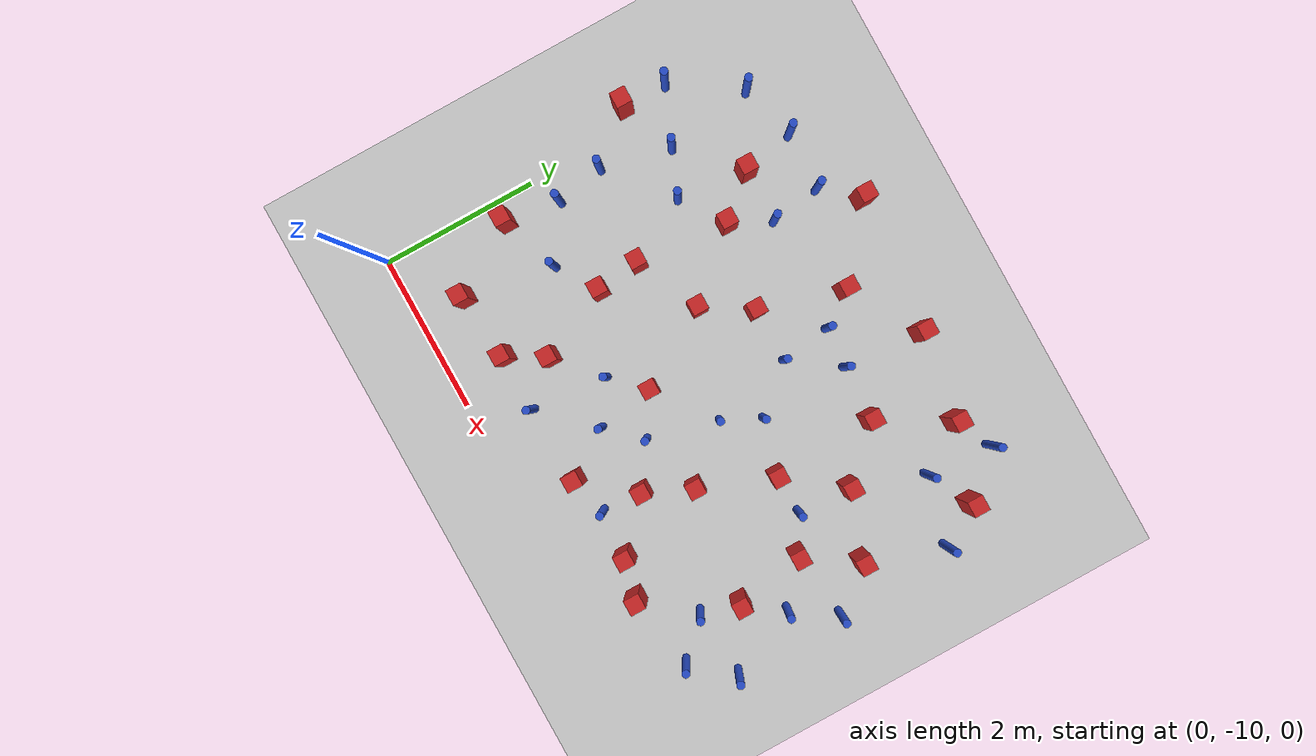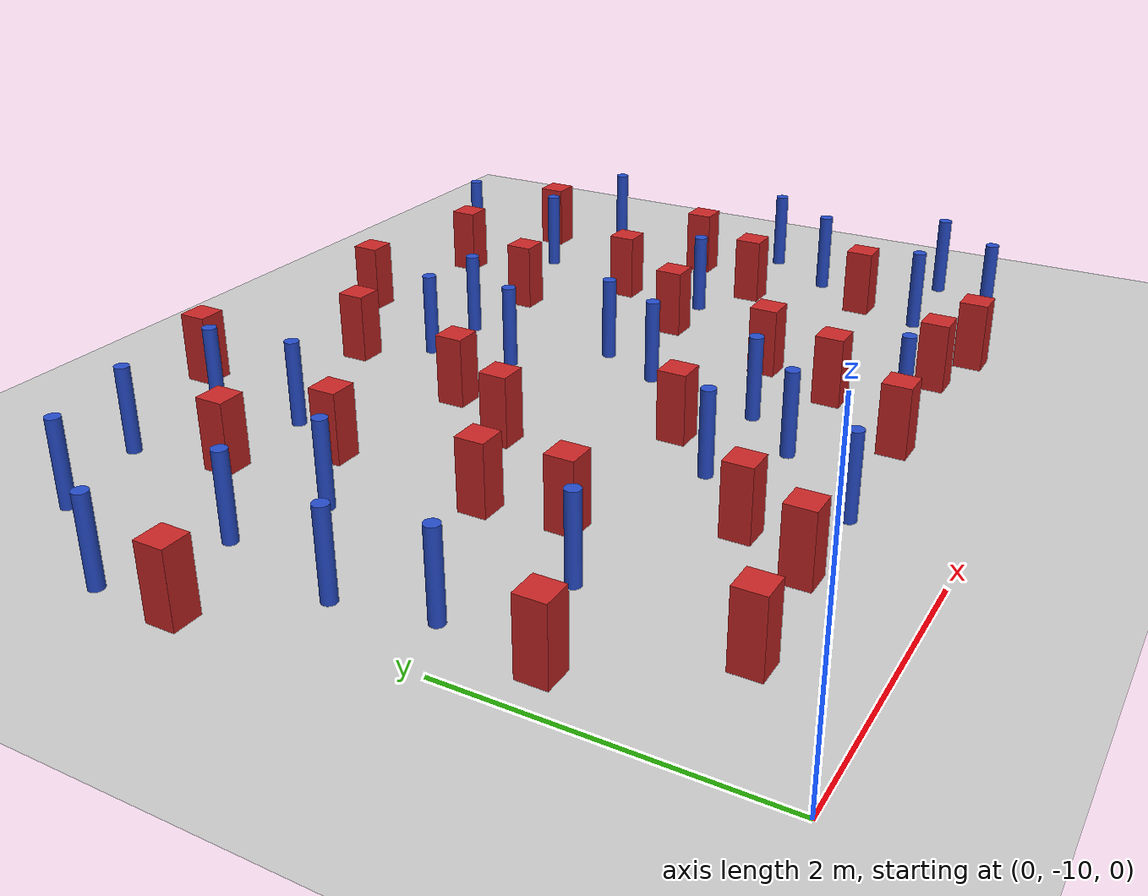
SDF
<sdf version="1.6">
 <world name="default">
  <model name="ground_plane">
   <static>1</static>
   <link name="link">
    <collision name="collision">
     <geometry><plane><normal>0 0 1</normal><size>100 100</size></plane></geometry>
     <surface><friction><ode><mu>100</mu><mu2>50</mu2></ode></friction></surface>
    </collision>
    <visual name="visual">
     <cast_shadows>0</cast_shadows>
     <geometry><plane><normal>0 0 1</normal><size>100 100</size></plane></geometry>
     <material>
      <ambient>1.0 1.0 1.0 1.0</ambient>
      <diffuse>0.8 0.8 0.8 1.0</diffuse>
      <specular>0.01 0.01 0.01 1.000000</specular>
     </material>
    </visual>
   </link>
  </model>
  <model name="pole_obstacle3">
   <static>true</static>
   <pose>0.289647013315 -7.17441640255 2.88873142074e-08 -9.90536689592e-09 4.60219948995e-07 -1.20965994956e-07</pose>
   <link name="link">
    <pose>0 0 0.3 0 -0 0</pose>
    <inertial>
     <mass>1</mass>
     <inertia><ixx>0.145833</ixx><ixy>0</ixy><ixz>0</ixz><iyy>0.145833</iyy><iyz>0</iyz><izz>0.125</izz></inertia>
    </inertial>
    <collision name="collision">
     <geometry><cylinder><radius>0.05</radius><length>.6</length></cylinder></geometry>
    </collision>
    <visual name="visual">
     <geometry><cylinder><radius>0.05</radius><length>.6</length></cylinder></geometry>
     <material>
      <script><name>Gazebo/Blue</name><uri>file://media/materials/scripts/gazebo.material</uri></script>
     </material>
    </visual>
   </link>
  </model>
  <model name="pole_obstacle4">
   <static>true</static>
   <pose>5.55034448489 -8.70579672338 2.88873142074e-08 -9.9053668967e-09 4.60219948993e-07 -1.20965994957e-07</pose>
   <link name="link">
    <pose>0 0 0.3 0 -0 0</pose>
    <inertial>
     <mass>1</mass>
     <inertia><ixx>0.145833</ixx><ixy>0</ixy><ixz>0</ixz><iyy>0.145833</iyy><iyz>0</iyz><izz>0.125</izz></inertia>
    </inertial>
    <collision name="collision">
     <geometry><cylinder><radius>0.05</radius><length>.6</length></cylinder></geometry>
    </collision>
    <visual name="visual">
     <geometry><cylinder><radius>0.05</radius><length>.6</length></cylinder></geometry>
     <material>
      <script><name>Gazebo/Blue</name><uri>file://media/materials/scripts/gazebo.material</uri></script>
     </material>
    </visual>
   </link>
  </model>
  <model name="square_post_obstacle4">
   <static>true</static>
   <pose>4.50219879882 -5.79253463406 8.22691968438e-08 7.22125133819e-06 -7.54495500217e-07 2.29674213826e-05</pose>
   <link name="link">
    <pose>0 0 0.25 0 -0 0</pose>
    <inertial>
     <mass>100</mass>
     <inertia>
      <ixx>0.166667</ixx>
      <ixy>0</ixy>
      <ixz>0</ixz>
      <iyy>0.166667</iyy>
      <iyz>0</iyz>
      <izz>0.166667</izz>
     </inertia>
    </inertial>
    <collision name="collision"><geometry><box><size>.2 .2 .5</size></box></geometry></collision>
    <visual name="visual">
     <geometry><box><size>.2 .2 .5</size></box></geometry>
     <material>
      <script><name>Gazebo/Red</name><uri>file://media/materials/scripts/gazebo.material</uri></script>
     </material>
    </visual>
   </link>
  </model>
  <model name="square_post_obstacle11">
   <static>true</static>
   <pose>3.88004198026 -4.7429489376 8.22691968438e-08 7.2212513382e-06 -7.54495500217e-07 2.29674213826e-05</pose>
   <link name="link">
    <pose>0 0 0.25 0 -0 0</pose>
    <inertial>
     <mass>100</mass>
     <inertia>
      <ixx>0.166667</ixx>
      <ixy>0</ixy>
      <ixz>0</ixz>
      <iyy>0.166667</iyy>
      <iyz>0</iyz>
      <izz>0.166667</izz>
     </inertia>
    </inertial>
    <collision name="collision"><geometry><box><size>.2 .2 .5</size></box></geometry></collision>
    <visual name="visual">
     <geometry><box><size>.2 .2 .5</size></box></geometry>
     <material>
      <script><name>Gazebo/Red</name><uri>file://media/materials/scripts/gazebo.material</uri></script>
     </material>
    </visual>
   </link>
  </model>
  <model name="pole_obstacle21">
   <static>true</static>
   <pose>1.05807493079 -8.22462605831 2.88873142074e-08 -9.90536690474e-09 4.60219948974e-07 -1.2096599497e-07</pose>
   <link name="link">
    <pose>0 0 0.3 0 -0 0</pose>
    <inertial>
     <mass>1</mass>
     <inertia><ixx>0.145833</ixx><ixy>0</ixy><ixz>0</ixz><iyy>0.145833</iyy><iyz>0</iyz><izz>0.125</izz></inertia>
    </inertial>
    <collision name="collision">
     <geometry><cylinder><radius>0.05</radius><length>.6</length></cylinder></geometry>
    </collision>
    <visual name="visual">
     <geometry><cylinder><radius>0.05</radius><length>.6</length></cylinder></geometry>
     <material>
      <script><name>Gazebo/Blue</name><uri>file://media/materials/scripts/gazebo.material</uri></script>
     </material>
    </visual>
   </link>
  </model>
  <model name="square_post_obstacle18">
   <static>true</static>
   <pose>2.99183701534 -5.29524657008 8.22691968438e-08 7.22125133819e-06 -7.54495500217e-07 2.29674213826e-05</pose>
   <link name="link">
    <pose>0 0 0.25 0 -0 0</pose>
    <inertial>
     <mass>100</mass>
     <inertia>
      <ixx>0.166667</ixx>
      <ixy>0</ixy>
      <ixz>0</ixz>
      <iyy>0.166667</iyy>
      <iyz>0</iyz>
      <izz>0.166667</izz>
     </inertia>
    </inertial>
    <collision name="collision"><geometry><box><size>.2 .2 .5</size></box></geometry></collision>
    <visual name="visual">
     <geometry><box><size>.2 .2 .5</size></box></geometry>
     <material>
      <script><name>Gazebo/Red</name><uri>file://media/materials/scripts/gazebo.material</uri></script>
     </material>
    </visual>
   </link>
  </model>
  <model name="pole_obstacle27">
   <static>true</static>
   <pose>3.0299802702 -8.66852703791 2.88873142074e-08 -9.90536692318e-09 4.6021994893e-07 -1.20965994988e-07</pose>
   <link name="link">
    <pose>0 0 0.3 0 -0 0</pose>
    <inertial>
     <mass>1</mass>
     <inertia><ixx>0.145833</ixx><ixy>0</ixy><ixz>0</ixz><iyy>0.145833</iyy><iyz>0</iyz><izz>0.125</izz></inertia>
    </inertial>
    <collision name="collision">
     <geometry><cylinder><radius>0.05</radius><length>.6</length></cylinder></geometry>
    </collision>
    <visual name="visual">
     <geometry><cylinder><radius>0.05</radius><length>.6</length></cylinder></geometry>
     <material>
      <script><name>Gazebo/Blue</name><uri>file://media/materials/scripts/gazebo.material</uri></script>
     </material>
    </visual>
   </link>
  </model>
  <model name="pole_obstacle28">
   <static>true</static>
   <pose>6.3905071494 -7.2385293284 2.88873142074e-08 -9.90536690842e-09 4.60219948965e-07 -1.20965994976e-07</pose>
   <link name="link">
    <pose>0 0 0.3 0 -0 0</pose>
    <inertial>
     <mass>1</mass>
     <inertia><ixx>0.145833</ixx><ixy>0</ixy><ixz>0</ixz><iyy>0.145833</iyy><iyz>0</iyz><izz>0.125</izz></inertia>
    </inertial>
    <collision name="collision">
     <geometry><cylinder><radius>0.05</radius><length>.6</length></cylinder></geometry>
    </collision>
    <visual name="visual">
     <geometry><cylinder><radius>0.05</radius><length>.6</length></cylinder></geometry>
     <material>
      <script><name>Gazebo/Blue</name><uri>file://media/materials/scripts/gazebo.material</uri></script>
     </material>
    </visual>
   </link>
  </model>
  <model name="pole_obstacle33">
   <static>true</static>
   <pose>0.318309777084 -5.17466550888 2.88873142074e-08 -9.90536689683e-09 4.60219948993e-07 -1.20965994957e-07</pose>
   <link name="link">
    <pose>0 0 0.3 0 -0 0</pose>
    <inertial>
     <mass>1</mass>
     <inertia><ixx>0.145833</ixx><ixy>0</ixy><ixz>0</ixz><iyy>0.145833</iyy><iyz>0</iyz><izz>0.125</izz></inertia>
    </inertial>
    <collision name="collision">
     <geometry><cylinder><radius>0.05</radius><length>.6</length></cylinder></geometry>
    </collision>
    <visual name="visual">
     <geometry><cylinder><radius>0.05</radius><length>.6</length></cylinder></geometry>
     <material>
      <script><name>Gazebo/Blue</name><uri>file://media/materials/scripts/gazebo.material</uri></script>
     </material>
    </visual>
   </link>
  </model>
  <model name="square_post_obstacle29">
   <static>true</static>
   <pose>5.03210273392 -9.29875231078 8.22691968438e-08 7.22125133819e-06 -7.54495500217e-07 2.29674213826e-05</pose>
   <link name="link">
    <pose>0 0 0.25 0 -0 0</pose>
    <inertial>
     <mass>100</mass>
     <inertia>
      <ixx>0.166667</ixx>
      <ixy>0</ixy>
      <ixz>0</ixz>
      <iyy>0.166667</iyy>
      <iyz>0</iyz>
      <izz>0.166667</izz>
     </inertia>
    </inertial>
    <collision name="collision"><geometry><box><size>.2 .2 .5</size></box></geometry></collision>
    <visual name="visual">
     <geometry><box><size>.2 .2 .5</size></box></geometry>
     <material>
      <script><name>Gazebo/Red</name><uri>file://media/materials/scripts/gazebo.material</uri></script>
     </material>
    </visual>
   </link>
  </model>
  <model name="pole_obstacle38">
   <static>true</static>
   <pose>6.03492944194 -7.77203540346 2.88873142074e-08 -9.90536690842e-09 4.60219948965e-07 -1.20965994976e-07</pose>
   <link name="link">
    <pose>0 0 0.3 0 -0 0</pose>
    <inertial>
     <mass>1</mass>
     <inertia><ixx>0.145833</ixx><ixy>0</ixy><ixz>0</ixz><iyy>0.145833</iyy><iyz>0</iyz><izz>0.125</izz></inertia>
    </inertial>
    <collision name="collision">
     <geometry><cylinder><radius>0.05</radius><length>.6</length></cylinder></geometry>
    </collision>
    <visual name="visual">
     <geometry><cylinder><radius>0.05</radius><length>.6</length></cylinder></geometry>
     <material>
      <script><name>Gazebo/Blue</name><uri>file://media/materials/scripts/gazebo.material</uri></script>
     </material>
    </visual>
   </link>
  </model>
  <model name="pole_obstacle39">
   <static>true</static>
   <pose>2.43836224285 -9.28975259155 2.88873142074e-08 -9.90536692318e-09 4.6021994893e-07 -1.20965994988e-07</pose>
   <link name="link">
    <pose>0 0 0.3 0 -0 0</pose>
    <inertial>
     <mass>1</mass>
     <inertia><ixx>0.145833</ixx><ixy>0</ixy><ixz>0</ixz><iyy>0.145833</iyy><iyz>0</iyz><izz>0.125</izz></inertia>
    </inertial>
    <collision name="collision">
     <geometry><cylinder><radius>0.05</radius><length>.6</length></cylinder></geometry>
    </collision>
    <visual name="visual">
     <geometry><cylinder><radius>0.05</radius><length>.6</length></cylinder></geometry>
     <material>
      <script><name>Gazebo/Blue</name><uri>file://media/materials/scripts/gazebo.material</uri></script>
     </material>
    </visual>
   </link>
  </model>
  <model name="square_post_obstacle37">
   <static>true</static>
   <pose>1.60803207701 -6.16248636813 8.22691968438e-08 7.2212513382e-06 -7.54495500217e-07 2.29674213826e-05</pose>
   <link name="link">
    <pose>0 0 0.25 0 -0 0</pose>
    <inertial>
     <mass>100</mass>
     <inertia>
      <ixx>0.166667</ixx>
      <ixy>0</ixy>
      <ixz>0</ixz>
      <iyy>0.166667</iyy>
      <iyz>0</iyz>
      <izz>0.166667</izz>
     </inertia>
    </inertial>
    <collision name="collision"><geometry><box><size>.2 .2 .5</size></box></geometry></collision>
    <visual name="visual">
     <geometry><box><size>.2 .2 .5</size></box></geometry>
     <material>
      <script><name>Gazebo/Red</name><uri>file://media/materials/scripts/gazebo.material</uri></script>
     </material>
    </visual>
   </link>
  </model>
  <model name="pole_obstacle52">
   <static>true</static>
   <pose>1.85922119316 -5.64357730502 2.88873142074e-08 -9.90536689852e-09 4.60219948989e-07 -1.2096599496e-07</pose>
   <link name="link">
    <pose>0 0 0.3 0 -0 0</pose>
    <inertial>
     <mass>1</mass>
     <inertia><ixx>0.145833</ixx><ixy>0</ixy><ixz>0</ixz><iyy>0.145833</iyy><iyz>0</iyz><izz>0.125</izz></inertia>
    </inertial>
    <collision name="collision">
     <geometry><cylinder><radius>0.05</radius><length>.6</length></cylinder></geometry>
    </collision>
    <visual name="visual">
     <geometry><cylinder><radius>0.05</radius><length>.6</length></cylinder></geometry>
     <material>
      <script><name>Gazebo/Blue</name><uri>file://media/materials/scripts/gazebo.material</uri></script>
     </material>
    </visual>
   </link>
  </model>
  <model name="square_post_obstacle41">
   <static>true</static>
   <pose>2.68928621535 -6.36576682193 8.22691968438e-08 7.2212513382e-06 -7.54495500217e-07 2.29674213826e-05</pose>
   <link name="link">
    <pose>0 0 0.25 0 -0 0</pose>
    <inertial>
     <mass>100</mass>
     <inertia>
      <ixx>0.166667</ixx>
      <ixy>0</ixy>
      <ixz>0</ixz>
      <iyy>0.166667</iyy>
      <iyz>0</iyz>
      <izz>0.166667</izz>
     </inertia>
    </inertial>
    <collision name="collision"><geometry><box><size>.2 .2 .5</size></box></geometry></collision>
    <visual name="visual">
     <geometry><box><size>.2 .2 .5</size></box></geometry>
     <material>
      <script><name>Gazebo/Red</name><uri>file://media/materials/scripts/gazebo.material</uri></script>
     </material>
    </visual>
   </link>
  </model>
  <model name="pole_obstacle57">
   <static>true</static>
   <pose>3.3826965203 -6.35336297614 2.88873142074e-08 -9.90536689859e-09 4.60219948989e-07 -1.20965994961e-07</pose>
   <link name="link">
    <pose>0 0 0.3 0 -0 0</pose>
    <inertial>
     <mass>1</mass>
     <inertia><ixx>0.145833</ixx><ixy>0</ixy><ixz>0</ixz><iyy>0.145833</iyy><iyz>0</iyz><izz>0.125</izz></inertia>
    </inertial>
    <collision name="collision">
     <geometry><cylinder><radius>0.05</radius><length>.6</length></cylinder></geometry>
    </collision>
    <visual name="visual">
     <geometry><cylinder><radius>0.05</radius><length>.6</length></cylinder></geometry>
     <material>
      <script><name>Gazebo/Blue</name><uri>file://media/materials/scripts/gazebo.material</uri></script>
     </material>
    </visual>
   </link>
  </model>
  <model name="square_post_obstacle45">
   <static>true</static>
   <pose>0.295105017387 -8.48352578291 8.22691968438e-08 7.2212513382e-06 -7.54495500217e-07 2.29674213826e-05</pose>
   <link name="link">
    <pose>0 0 0.25 0 -0 0</pose>
    <inertial>
     <mass>100</mass>
     <inertia>
      <ixx>0.166667</ixx>
      <ixy>0</ixy>
      <ixz>0</ixz>
      <iyy>0.166667</iyy>
      <iyz>0</iyz>
      <izz>0.166667</izz>
     </inertia>
    </inertial>
    <collision name="collision"><geometry><box><size>.2 .2 .5</size></box></geometry></collision>
    <visual name="visual">
     <geometry><box><size>.2 .2 .5</size></box></geometry>
     <material>
      <script><name>Gazebo/Red</name><uri>file://media/materials/scripts/gazebo.material</uri></script>
     </material>
    </visual>
   </link>
  </model>
  <model name="pole_obstacle63">
   <static>true</static>
   <pose>5.42742456569 -5.51341413305 2.88873142074e-08 -9.90536690842e-09 4.60219948965e-07 -1.20965994976e-07</pose>
   <link name="link">
    <pose>0 0 0.3 0 -0 0</pose>
    <inertial>
     <mass>1</mass>
     <inertia><ixx>0.145833</ixx><ixy>0</ixy><ixz>0</ixz><iyy>0.145833</iyy><iyz>0</iyz><izz>0.125</izz></inertia>
    </inertial>
    <collision name="collision">
     <geometry><cylinder><radius>0.05</radius><length>.6</length></cylinder></geometry>
    </collision>
    <visual name="visual">
     <geometry><cylinder><radius>0.05</radius><length>.6</length></cylinder></geometry>
     <material>
      <script><name>Gazebo/Blue</name><uri>file://media/materials/scripts/gazebo.material</uri></script>
     </material>
    </visual>
   </link>
  </model>
  <model name="pole_obstacle65">
   <static>true</static>
   <pose>0.491046160283 -6.29526179245 2.88873142074e-08 -9.90536689616e-09 4.60219948994e-07 -1.20965994955e-07</pose>
   <link name="link">
    <pose>0 0 0.3 0 -0 0</pose>
    <inertial>
     <mass>1</mass>
     <inertia><ixx>0.145833</ixx><ixy>0</ixy><ixz>0</ixz><iyy>0.145833</iyy><iyz>0</iyz><izz>0.125</izz></inertia>
    </inertial>
    <collision name="collision">
     <geometry><cylinder><radius>0.05</radius><length>.6</length></cylinder></geometry>
    </collision>
    <visual name="visual">
     <geometry><cylinder><radius>0.05</radius><length>.6</length></cylinder></geometry>
     <material>
      <script><name>Gazebo/Blue</name><uri>file://media/materials/scripts/gazebo.material</uri></script>
     </material>
    </visual>
   </link>
  </model>
  <model name="square_post_obstacle55">
   <static>true</static>
   <pose>5.10214788465 -6.4042798632 8.22691968438e-08 7.2212513382e-06 -7.54495500217e-07 2.29674213826e-05</pose>
   <link name="link">
    <pose>0 0 0.25 0 -0 0</pose>
    <inertial>
     <mass>100</mass>
     <inertia>
      <ixx>0.166667</ixx>
      <ixy>0</ixy>
      <ixz>0</ixz>
      <iyy>0.166667</iyy>
      <iyz>0</iyz>
      <izz>0.166667</izz>
     </inertia>
    </inertial>
    <collision name="collision"><geometry><box><size>.2 .2 .5</size></box></geometry></collision>
    <visual name="visual">
     <geometry><box><size>.2 .2 .5</size></box></geometry>
     <material>
      <script><name>Gazebo/Red</name><uri>file://media/materials/scripts/gazebo.material</uri></script>
     </material>
    </visual>
   </link>
  </model>
  <model name="square_post_obstacle57">
   <static>true</static>
   <pose>0.85562043418 -9.35954926265 8.22691968438e-08 7.22125133819e-06 -7.54495500217e-07 2.29674213826e-05</pose>
   <link name="link">
    <pose>0 0 0.25 0 -0 0</pose>
    <inertial>
     <mass>100</mass>
     <inertia>
      <ixx>0.166667</ixx>
      <ixy>0</ixy>
      <ixz>0</ixz>
      <iyy>0.166667</iyy>
      <iyz>0</iyz>
      <izz>0.166667</izz>
     </inertia>
    </inertial>
    <collision name="collision"><geometry><box><size>.2 .2 .5</size></box></geometry></collision>
    <visual name="visual">
     <geometry><box><size>.2 .2 .5</size></box></geometry>
     <material>
      <script><name>Gazebo/Red</name><uri>file://media/materials/scripts/gazebo.material</uri></script>
     </material>
    </visual>
   </link>
  </model>
  <model name="square_post_obstacle61">
   <static>true</static>
   <pose>1.5698614102 -7.89176565725 8.22691968438e-08 7.2212513382e-06 -7.54495500217e-07 2.29674213826e-05</pose>
   <link name="link">
    <pose>0 0 0.25 0 -0 0</pose>
    <inertial>
     <mass>100</mass>
     <inertia>
      <ixx>0.166667</ixx>
      <ixy>0</ixy>
      <ixz>0</ixz>
      <iyy>0.166667</iyy>
      <iyz>0</iyz>
      <izz>0.166667</izz>
     </inertia>
    </inertial>
    <collision name="collision"><geometry><box><size>.2 .2 .5</size></box></geometry></collision>
    <visual name="visual">
     <geometry><box><size>.2 .2 .5</size></box></geometry>
     <material>
      <script><name>Gazebo/Red</name><uri>file://media/materials/scripts/gazebo.material</uri></script>
     </material>
    </visual>
   </link>
  </model>
  <model name="pole_obstacle73">
   <static>true</static>
   <pose>5.48417873443 -4.67692983862 2.88873142074e-08 -9.90536690842e-09 4.60219948965e-07 -1.20965994976e-07</pose>
   <link name="link">
    <pose>0 0 0.3 0 -0 0</pose>
    <inertial>
     <mass>1</mass>
     <inertia><ixx>0.145833</ixx><ixy>0</ixy><ixz>0</ixz><iyy>0.145833</iyy><iyz>0</iyz><izz>0.125</izz></inertia>
    </inertial>
    <collision name="collision">
     <geometry><cylinder><radius>0.05</radius><length>.6</length></cylinder></geometry>
    </collision>
    <visual name="visual">
     <geometry><cylinder><radius>0.05</radius><length>.6</length></cylinder></geometry>
     <material>
      <script><name>Gazebo/Blue</name><uri>file://media/materials/scripts/gazebo.material</uri></script>
     </material>
    </visual>
   </link>
  </model>
  <model name="pole_obstacle78">
   <static>true</static>
   <pose>5.99858282601 -9.14602631289 2.88873142074e-08 -9.9053668967e-09 4.60219948993e-07 -1.20965994957e-07</pose>
   <link name="link">
    <pose>0 0 0.3 0 -0 0</pose>
    <inertial>
     <mass>1</mass>
     <inertia><ixx>0.145833</ixx><ixy>0</ixy><ixz>0</ixz><iyy>0.145833</iyy><iyz>0</iyz><izz>0.125</izz></inertia>
    </inertial>
    <collision name="collision">
     <geometry><cylinder><radius>0.05</radius><length>.6</length></cylinder></geometry>
    </collision>
    <visual name="visual">
     <geometry><cylinder><radius>0.05</radius><length>.6</length></cylinder></geometry>
     <material>
      <script><name>Gazebo/Blue</name><uri>file://media/materials/scripts/gazebo.material</uri></script>
     </material>
    </visual>
   </link>
  </model>
  <model name="pole_obstacle79">
   <static>true</static>
   <pose>-0.220142687257 -5.99588297079 2.88873142074e-08 -9.90536689703e-09 4.60219948992e-07 -1.20965994959e-07</pose>
   <link name="link">
    <pose>0 0 0.3 0 -0 0</pose>
    <inertial>
     <mass>1</mass>
     <inertia><ixx>0.145833</ixx><ixy>0</ixy><ixz>0</ixz><iyy>0.145833</iyy><iyz>0</iyz><izz>0.125</izz></inertia>
    </inertial>
    <collision name="collision">
     <geometry><cylinder><radius>0.05</radius><length>.6</length></cylinder></geometry>
    </collision>
    <visual name="visual">
     <geometry><cylinder><radius>0.05</radius><length>.6</length></cylinder></geometry>
     <material>
      <script><name>Gazebo/Blue</name><uri>file://media/materials/scripts/gazebo.material</uri></script>
     </material>
    </visual>
   </link>
  </model>
  <model name="pole_obstacle82">
   <static>true</static>
   <pose>3.41654378482 -8.26095335905 2.88873142074e-08 -9.90536692318e-09 4.6021994893e-07 -1.20965994988e-07</pose>
   <link name="link">
    <pose>0 0 0.3 0 -0 0</pose>
    <inertial>
     <mass>1</mass>
     <inertia><ixx>0.145833</ixx><ixy>0</ixy><ixz>0</ixz><iyy>0.145833</iyy><iyz>0</iyz><izz>0.125</izz></inertia>
    </inertial>
    <collision name="collision">
     <geometry><cylinder><radius>0.05</radius><length>.6</length></cylinder></geometry>
    </collision>
    <visual name="visual">
     <geometry><cylinder><radius>0.05</radius><length>.6</length></cylinder></geometry>
     <material>
      <script><name>Gazebo/Blue</name><uri>file://media/materials/scripts/gazebo.material</uri></script>
     </material>
    </visual>
   </link>
  </model>
  <model name="square_post_obstacle87">
   <static>true</static>
   <pose>1.98760986462 -8.8011796065 8.22691968438e-08 7.2212513382e-06 -7.54495500217e-07 2.29674213826e-05</pose>
   <link name="link">
    <pose>0 0 0.25 0 -0 0</pose>
    <inertial>
     <mass>100</mass>
     <inertia>
      <ixx>0.166667</ixx>
      <ixy>0</ixy>
      <ixz>0</ixz>
      <iyy>0.166667</iyy>
      <iyz>0</iyz>
      <izz>0.166667</izz>
     </inertia>
    </inertial>
    <collision name="collision"><geometry><box><size>.2 .2 .5</size></box></geometry></collision>
    <visual name="visual">
     <geometry><box><size>.2 .2 .5</size></box></geometry>
     <material>
      <script><name>Gazebo/Red</name><uri>file://media/materials/scripts/gazebo.material</uri></script>
     </material>
    </visual>
   </link>
  </model>
  <model name="square_post_obstacle89">
   <static>true</static>
   <pose>2.32214594269 -6.95775635293 8.22691968438e-08 7.2212513382e-06 -7.54495500217e-07 2.29674213826e-05</pose>
   <link name="link">
    <pose>0 0 0.25 0 -0 0</pose>
    <inertial>
     <mass>100</mass>
     <inertia>
      <ixx>0.166667</ixx>
      <ixy>0</ixy>
      <ixz>0</ixz>
      <iyy>0.166667</iyy>
      <iyz>0</iyz>
      <izz>0.166667</izz>
     </inertia>
    </inertial>
    <collision name="collision"><geometry><box><size>.2 .2 .5</size></box></geometry></collision>
    <visual name="visual">
     <geometry><box><size>.2 .2 .5</size></box></geometry>
     <material>
      <script><name>Gazebo/Red</name><uri>file://media/materials/scripts/gazebo.material</uri></script>
     </material>
    </visual>
   </link>
  </model>
  <model name="square_post_obstacle92">
   <static>true</static>
   <pose>5.68136752098 -8.21846066049 8.22691968438e-08 7.22125133819e-06 -7.54495500217e-07 2.29674213826e-05</pose>
   <link name="link">
    <pose>0 0 0.25 0 -0 0</pose>
    <inertial>
     <mass>100</mass>
     <inertia>
      <ixx>0.166667</ixx>
      <ixy>0</ixy>
      <ixz>0</ixz>
      <iyy>0.166667</iyy>
      <iyz>0</iyz>
      <izz>0.166667</izz>
     </inertia>
    </inertial>
    <collision name="collision"><geometry><box><size>.2 .2 .5</size></box></geometry></collision>
    <visual name="visual">
     <geometry><box><size>.2 .2 .5</size></box></geometry>
     <material>
      <script><name>Gazebo/Red</name><uri>file://media/materials/scripts/gazebo.material</uri></script>
     </material>
    </visual>
   </link>
  </model>
  <model name="pole_obstacle107">
   <static>true</static>
   <pose>3.8123427238 -5.75265353441 2.88873142074e-08 -9.90536689859e-09 4.60219948989e-07 -1.20965994961e-07</pose>
   <link name="link">
    <pose>0 0 0.3 0 -0 0</pose>
    <inertial>
     <mass>1</mass>
     <inertia><ixx>0.145833</ixx><ixy>0</ixy><ixz>0</ixz><iyy>0.145833</iyy><iyz>0</iyz><izz>0.125</izz></inertia>
    </inertial>
    <collision name="collision">
     <geometry><cylinder><radius>0.05</radius><length>.6</length></cylinder></geometry>
    </collision>
    <visual name="visual">
     <geometry><cylinder><radius>0.05</radius><length>.6</length></cylinder></geometry>
     <material>
      <script><name>Gazebo/Blue</name><uri>file://media/materials/scripts/gazebo.material</uri></script>
     </material>
    </visual>
   </link>
  </model>
  <model name="pole_obstacle108">
   <static>true</static>
   <pose>1.06537539007 -6.5296060038 2.88873142074e-08 -9.90536689852e-09 4.60219948989e-07 -1.2096599496e-07</pose>
   <link name="link">
    <pose>0 0 0.3 0 -0 0</pose>
    <inertial>
     <mass>1</mass>
     <inertia><ixx>0.145833</ixx><ixy>0</ixy><ixz>0</ixz><iyy>0.145833</iyy><iyz>0</iyz><izz>0.125</izz></inertia>
    </inertial>
    <collision name="collision">
     <geometry><cylinder><radius>0.05</radius><length>.6</length></cylinder></geometry>
    </collision>
    <visual name="visual">
     <geometry><cylinder><radius>0.05</radius><length>.6</length></cylinder></geometry>
     <material>
      <script><name>Gazebo/Blue</name><uri>file://media/materials/scripts/gazebo.material</uri></script>
     </material>
    </visual>
   </link>
  </model>
  <model name="square_post_obstacle107">
   <static>true</static>
   <pose>4.20049698985 -8.02603836467 8.22691968438e-08 7.22125133819e-06 -7.54495500217e-07 2.29674213826e-05</pose>
   <link name="link">
    <pose>0 0 0.25 0 -0 0</pose>
    <inertial>
     <mass>100</mass>
     <inertia>
      <ixx>0.166667</ixx>
      <ixy>0</ixy>
      <ixz>0</ixz>
      <iyy>0.166667</iyy>
      <iyz>0</iyz>
      <izz>0.166667</izz>
     </inertia>
    </inertial>
    <collision name="collision"><geometry><box><size>.2 .2 .5</size></box></geometry></collision>
    <visual name="visual">
     <geometry><box><size>.2 .2 .5</size></box></geometry>
     <material>
      <script><name>Gazebo/Red</name><uri>file://media/materials/scripts/gazebo.material</uri></script>
     </material>
    </visual>
   </link>
  </model>
  <model name="square_post_obstacle108">
   <static>true</static>
   <pose>5.94728491843 -6.70066411979 8.22691968438e-08 7.2212513382e-06 -7.54495500217e-07 2.29674213826e-05</pose>
   <link name="link">
    <pose>0 0 0.25 0 -0 0</pose>
    <inertial>
     <mass>100</mass>
     <inertia>
      <ixx>0.166667</ixx>
      <ixy>0</ixy>
      <ixz>0</ixz>
      <iyy>0.166667</iyy>
      <iyz>0</iyz>
      <izz>0.166667</izz>
     </inertia>
    </inertial>
    <collision name="collision"><geometry><box><size>.2 .2 .5</size></box></geometry></collision>
    <visual name="visual">
     <geometry><box><size>.2 .2 .5</size></box></geometry>
     <material>
      <script><name>Gazebo/Red</name><uri>file://media/materials/scripts/gazebo.material</uri></script>
     </material>
    </visual>
   </link>
  </model>
  <model name="pole_obstacle131">
   <static>true</static>
   <pose>6.29278324427 -5.72598595442 2.88873142074e-08 -9.90536690842e-09 4.60219948965e-07 -1.20965994976e-07</pose>
   <link name="link">
    <pose>0 0 0.3 0 -0 0</pose>
    <inertial>
     <mass>1</mass>
     <inertia><ixx>0.145833</ixx><ixy>0</ixy><ixz>0</ixz><iyy>0.145833</iyy><iyz>0</iyz><izz>0.125</izz></inertia>
    </inertial>
    <collision name="collision">
     <geometry><cylinder><radius>0.05</radius><length>.6</length></cylinder></geometry>
    </collision>
    <visual name="visual">
     <geometry><cylinder><radius>0.05</radius><length>.6</length></cylinder></geometry>
     <material>
      <script><name>Gazebo/Blue</name><uri>file://media/materials/scripts/gazebo.material</uri></script>
     </material>
    </visual>
   </link>
  </model>
  <model name="square_post_obstacle135">
   <static>true</static>
   <pose>3.4205635517 -9.25035941224 8.22691968438e-08 7.22125133819e-06 -7.54495500217e-07 2.29674213826e-05</pose>
   <link name="link">
    <pose>0 0 0.25 0 -0 0</pose>
    <inertial>
     <mass>100</mass>
     <inertia>
      <ixx>0.166667</ixx>
      <ixy>0</ixy>
      <ixz>0</ixz>
      <iyy>0.166667</iyy>
      <iyz>0</iyz>
      <izz>0.166667</izz>
     </inertia>
    </inertial>
    <collision name="collision"><geometry><box><size>.2 .2 .5</size></box></geometry></collision>
    <visual name="visual">
     <geometry><box><size>.2 .2 .5</size></box></geometry>
     <material>
      <script><name>Gazebo/Red</name><uri>file://media/materials/scripts/gazebo.material</uri></script>
     </material>
    </visual>
   </link>
  </model>
  <model name="square_post_obstacle149">
   <static>true</static>
   <pose>5.51652943532 -7.33927031778 8.22691968438e-08 7.2212513382e-06 -7.54495500217e-07 2.29674213826e-05</pose>
   <link name="link">
    <pose>0 0 0.25 0 -0 0</pose>
    <inertial>
     <mass>100</mass>
     <inertia>
      <ixx>0.166667</ixx>
      <ixy>0</ixy>
      <ixz>0</ixz>
      <iyy>0.166667</iyy>
      <iyz>0</iyz>
      <izz>0.166667</izz>
     </inertia>
    </inertial>
    <collision name="collision"><geometry><box><size>.2 .2 .5</size></box></geometry></collision>
    <visual name="visual">
     <geometry><box><size>.2 .2 .5</size></box></geometry>
     <material>
      <script><name>Gazebo/Red</name><uri>file://media/materials/scripts/gazebo.material</uri></script>
     </material>
    </visual>
   </link>
  </model>
  <model name="square_post_obstacle150">
   <static>true</static>
   <pose>1.50106716911 -7.33197781668 8.22691968438e-08 7.2212513382e-06 -7.54495500217e-07 2.29674213826e-05</pose>
   <link name="link">
    <pose>0 0 0.25 0 -0 0</pose>
    <inertial>
     <mass>100</mass>
     <inertia>
      <ixx>0.166667</ixx>
      <ixy>0</ixy>
      <ixz>0</ixz>
      <iyy>0.166667</iyy>
      <iyz>0</iyz>
      <izz>0.166667</izz>
     </inertia>
    </inertial>
    <collision name="collision"><geometry><box><size>.2 .2 .5</size></box></geometry></collision>
    <visual name="visual">
     <geometry><box><size>.2 .2 .5</size></box></geometry>
     <material>
      <script><name>Gazebo/Red</name><uri>file://media/materials/scripts/gazebo.material</uri></script>
     </material>
    </visual>
   </link>
  </model>
  <model name="pole_obstacle153">
   <static>true</static>
   <pose>3.87411912518 -6.90856525467 2.88873142074e-08 -9.90536689859e-09 4.60219948989e-07 -1.20965994961e-07</pose>
   <link name="link">
    <pose>0 0 0.3 0 -0 0</pose>
    <inertial>
     <mass>1</mass>
     <inertia><ixx>0.145833</ixx><ixy>0</ixy><ixz>0</ixz><iyy>0.145833</iyy><iyz>0</iyz><izz>0.125</izz></inertia>
    </inertial>
    <collision name="collision">
     <geometry><cylinder><radius>0.05</radius><length>.6</length></cylinder></geometry>
    </collision>
    <visual name="visual">
     <geometry><cylinder><radius>0.05</radius><length>.6</length></cylinder></geometry>
     <material>
      <script><name>Gazebo/Blue</name><uri>file://media/materials/scripts/gazebo.material</uri></script>
     </material>
    </visual>
   </link>
  </model>
  <model name="square_post_obstacle152">
   <static>true</static>
   <pose>1.16527288904 -5.65004429901 8.22691968438e-08 7.2212513382e-06 -7.54495500217e-07 2.29674213826e-05</pose>
   <link name="link">
    <pose>0 0 0.25 0 -0 0</pose>
    <inertial>
     <mass>100</mass>
     <inertia>
      <ixx>0.166667</ixx>
      <ixy>0</ixy>
      <ixz>0</ixz>
      <iyy>0.166667</iyy>
      <iyz>0</iyz>
      <izz>0.166667</izz>
     </inertia>
    </inertial>
    <collision name="collision"><geometry><box><size>.2 .2 .5</size></box></geometry></collision>
    <visual name="visual">
     <geometry><box><size>.2 .2 .5</size></box></geometry>
     <material>
      <script><name>Gazebo/Red</name><uri>file://media/materials/scripts/gazebo.material</uri></script>
     </material>
    </visual>
   </link>
  </model>
  <model name="square_post_obstacle157">
   <static>true</static>
   <pose>3.93741145733 -8.6162412967 8.22691968438e-08 7.22125133819e-06 -7.54495500217e-07 2.29674213826e-05</pose>
   <link name="link">
    <pose>0 0 0.25 0 -0 0</pose>
    <inertial>
     <mass>100</mass>
     <inertia>
      <ixx>0.166667</ixx>
      <ixy>0</ixy>
      <ixz>0</ixz>
      <iyy>0.166667</iyy>
      <iyz>0</iyz>
      <izz>0.166667</izz>
     </inertia>
    </inertial>
    <collision name="collision"><geometry><box><size>.2 .2 .5</size></box></geometry></collision>
    <visual name="visual">
     <geometry><box><size>.2 .2 .5</size></box></geometry>
     <material>
      <script><name>Gazebo/Red</name><uri>file://media/materials/scripts/gazebo.material</uri></script>
     </material>
    </visual>
   </link>
  </model>
  <model name="square_post_obstacle158">
   <static>true</static>
   <pose>-0.231504394793 -6.57056481357 8.22691968438e-08 7.2212513382e-06 -7.54495500217e-07 2.29674213826e-05</pose>
   <link name="link">
    <pose>0 0 0.25 0 -0 0</pose>
    <inertial>
     <mass>100</mass>
     <inertia>
      <ixx>0.166667</ixx>
      <ixy>0</ixy>
      <ixz>0</ixz>
      <iyy>0.166667</iyy>
      <iyz>0</iyz>
      <izz>0.166667</izz>
     </inertia>
    </inertial>
    <collision name="collision"><geometry><box><size>.2 .2 .5</size></box></geometry></collision>
    <visual name="visual">
     <geometry><box><size>.2 .2 .5</size></box></geometry>
     <material>
      <script><name>Gazebo/Red</name><uri>file://media/materials/scripts/gazebo.material</uri></script>
     </material>
    </visual>
   </link>
  </model>
  <model name="square_post_obstacle162">
   <static>true</static>
   <pose>4.52571439127 -9.16612994215 8.22691968438e-08 7.2212513382e-06 -7.54495500217e-07 2.29674213826e-05</pose>
   <link name="link">
    <pose>0 0 0.25 0 -0 0</pose>
    <inertial>
     <mass>100</mass>
     <inertia>
      <ixx>0.166667</ixx>
      <ixy>0</ixy>
      <ixz>0</ixz>
      <iyy>0.166667</iyy>
      <iyz>0</iyz>
      <izz>0.166667</izz>
     </inertia>
    </inertial>
    <collision name="collision"><geometry><box><size>.2 .2 .5</size></box></geometry></collision>
    <visual name="visual">
     <geometry><box><size>.2 .2 .5</size></box></geometry>
     <material>
      <script><name>Gazebo/Red</name><uri>file://media/materials/scripts/gazebo.material</uri></script>
     </material>
    </visual>
   </link>
  </model>
  <model name="pole_obstacle175">
   <static>true</static>
   <pose>1.03061295766 -4.97789777404 2.88873142074e-08 -9.90536689905e-09 4.60219948988e-07 -1.20965994961e-07</pose>
   <link name="link">
    <pose>0 0 0.3 0 -0 0</pose>
    <inertial>
     <mass>1</mass>
     <inertia><ixx>0.145833</ixx><ixy>0</ixy><ixz>0</ixz><iyy>0.145833</iyy><iyz>0</iyz><izz>0.125</izz></inertia>
    </inertial>
    <collision name="collision">
     <geometry><cylinder><radius>0.05</radius><length>.6</length></cylinder></geometry>
    </collision>
    <visual name="visual">
     <geometry><cylinder><radius>0.05</radius><length>.6</length></cylinder></geometry>
     <material>
      <script><name>Gazebo/Blue</name><uri>file://media/materials/scripts/gazebo.material</uri></script>
     </material>
    </visual>
   </link>
  </model>
  <model name="pole_obstacle176">
   <static>true</static>
   <pose>0.404595010752 -7.78913044352 2.88873142074e-08 -9.90536689683e-09 4.60219948993e-07 -1.20965994957e-07</pose>
   <link name="link">
    <pose>0 0 0.3 0 -0 0</pose>
    <inertial>
     <mass>1</mass>
     <inertia><ixx>0.145833</ixx><ixy>0</ixy><ixz>0</ixz><iyy>0.145833</iyy><iyz>0</iyz><izz>0.125</izz></inertia>
    </inertial>
    <collision name="collision">
     <geometry><cylinder><radius>0.05</radius><length>.6</length></cylinder></geometry>
    </collision>
    <visual name="visual">
     <geometry><cylinder><radius>0.05</radius><length>.6</length></cylinder></geometry>
     <material>
      <script><name>Gazebo/Blue</name><uri>file://media/materials/scripts/gazebo.material</uri></script>
     </material>
    </visual>
   </link>
  </model>
  <model name="pole_obstacle182">
   <static>true</static>
   <pose>3.92034634577 -9.13572181128 2.88873142074e-08 -9.90536692318e-09 4.6021994893e-07 -1.20965994988e-07</pose>
   <link name="link">
    <pose>0 0 0.3 0 -0 0</pose>
    <inertial>
     <mass>1</mass>
     <inertia><ixx>0.145833</ixx><ixy>0</ixy><ixz>0</ixz><iyy>0.145833</iyy><iyz>0</iyz><izz>0.125</izz></inertia>
    </inertial>
    <collision name="collision">
     <geometry><cylinder><radius>0.05</radius><length>.6</length></cylinder></geometry>
    </collision>
    <visual name="visual">
     <geometry><cylinder><radius>0.05</radius><length>.6</length></cylinder></geometry>
     <material>
      <script><name>Gazebo/Blue</name><uri>file://media/materials/scripts/gazebo.material</uri></script>
     </material>
    </visual>
   </link>
  </model>
  <model name="square_post_obstacle184">
   <static>true</static>
   <pose>5.9719605974 -5.22468601953 8.22691968438e-08 7.2212513382e-06 -7.54495500217e-07 2.29674213826e-05</pose>
   <link name="link">
    <pose>0 0 0.25 0 -0 0</pose>
    <inertial>
     <mass>100</mass>
     <inertia>
      <ixx>0.166667</ixx>
      <ixy>0</ixy>
      <ixz>0</ixz>
      <iyy>0.166667</iyy>
      <iyz>0</iyz>
      <izz>0.166667</izz>
     </inertia>
    </inertial>
    <collision name="collision"><geometry><box><size>.2 .2 .5</size></box></geometry></collision>
    <visual name="visual">
     <geometry><box><size>.2 .2 .5</size></box></geometry>
     <material>
      <script><name>Gazebo/Red</name><uri>file://media/materials/scripts/gazebo.material</uri></script>
     </material>
    </visual>
   </link>
  </model>
  <model name="pole_obstacle186">
   <static>true</static>
   <pose>6.41885034169 -8.65522267254 2.88873142074e-08 -9.9053668967e-09 4.60219948993e-07 -1.20965994957e-07</pose>
   <link name="link">
    <pose>0 0 0.3 0 -0 0</pose>
    <inertial>
     <mass>1</mass>
     <inertia><ixx>0.145833</ixx><ixy>0</ixy><ixz>0</ixz><iyy>0.145833</iyy><iyz>0</iyz><izz>0.125</izz></inertia>
    </inertial>
    <collision name="collision">
     <geometry><cylinder><radius>0.05</radius><length>.6</length></cylinder></geometry>
    </collision>
    <visual name="visual">
     <geometry><cylinder><radius>0.05</radius><length>.6</length></cylinder></geometry>
     <material>
      <script><name>Gazebo/Blue</name><uri>file://media/materials/scripts/gazebo.material</uri></script>
     </material>
    </visual>
   </link>
  </model>
  <model name="square_post_obstacle189">
   <static>true</static>
   <pose>2.12953746006 -4.58334064634 8.22691968438e-08 7.22125133819e-06 -7.54495500217e-07 2.29674213826e-05</pose>
   <link name="link">
    <pose>0 0 0.25 0 -0 0</pose>
    <inertial>
     <mass>100</mass>
     <inertia>
      <ixx>0.166667</ixx>
      <ixy>0</ixy>
      <ixz>0</ixz>
      <iyy>0.166667</iyy>
      <iyz>0</iyz>
      <izz>0.166667</izz>
     </inertia>
    </inertial>
    <collision name="collision"><geometry><box><size>.2 .2 .5</size></box></geometry></collision>
    <visual name="visual">
     <geometry><box><size>.2 .2 .5</size></box></geometry>
     <material>
      <script><name>Gazebo/Red</name><uri>file://media/materials/scripts/gazebo.material</uri></script>
     </material>
    </visual>
   </link>
  </model>
  <model name="square_post_obstacle196">
   <static>true</static>
   <pose>5.01548591612 -4.91099179489 8.22691968438e-08 7.2212513382e-06 -7.54495500217e-07 2.29674213826e-05</pose>
   <link name="link">
    <pose>0 0 0.25 0 -0 0</pose>
    <inertial>
     <mass>100</mass>
     <inertia>
      <ixx>0.166667</ixx>
      <ixy>0</ixy>
      <ixz>0</ixz>
      <iyy>0.166667</iyy>
      <iyz>0</iyz>
      <izz>0.166667</izz>
     </inertia>
    </inertial>
    <collision name="collision"><geometry><box><size>.2 .2 .5</size></box></geometry></collision>
    <visual name="visual">
     <geometry><box><size>.2 .2 .5</size></box></geometry>
     <material>
      <script><name>Gazebo/Red</name><uri>file://media/materials/scripts/gazebo.material</uri></script>
     </material>
    </visual>
   </link>
  </model>
  <model name="pole_obstacle188">
   <static>true</static>
   <pose>1.77065657234 -5.01035503449 2.88873142074e-08 -9.90536689852e-09 4.60219948989e-07 -1.2096599496e-07</pose>
   <link name="link">
    <pose>0 0 0.3 0 -0 0</pose>
    <inertial>
     <mass>1</mass>
     <inertia><ixx>0.145833</ixx><ixy>0</ixy><ixz>0</ixz><iyy>0.145833</iyy><iyz>0</iyz><izz>0.125</izz></inertia>
    </inertial>
    <collision name="collision">
     <geometry><cylinder><radius>0.05</radius><length>.6</length></cylinder></geometry>
    </collision>
    <visual name="visual">
     <geometry><cylinder><radius>0.05</radius><length>.6</length></cylinder></geometry>
     <material>
      <script><name>Gazebo/Blue</name><uri>file://media/materials/scripts/gazebo.material</uri></script>
     </material>
    </visual>
   </link>
  </model>
  <model name="pole_obstacle196">
   <static>true</static>
   <pose>3.64013044873 -7.38279908041 2.88873142074e-08 -9.90536689859e-09 4.60219948989e-07 -1.20965994961e-07</pose>
   <link name="link">
    <pose>0 0 0.3 0 -0 0</pose>
    <inertial>
     <mass>1</mass>
     <inertia><ixx>0.145833</ixx><ixy>0</ixy><ixz>0</ixz><iyy>0.145833</iyy><iyz>0</iyz><izz>0.125</izz></inertia>
    </inertial>
    <collision name="collision">
     <geometry><cylinder><radius>0.05</radius><length>.6</length></cylinder></geometry>
    </collision>
    <visual name="visual">
     <geometry><cylinder><radius>0.05</radius><length>.6</length></cylinder></geometry>
     <material>
      <script><name>Gazebo/Blue</name><uri>file://media/materials/scripts/gazebo.material</uri></script>
     </material>
    </visual>
   </link>
  </model>
  <model name="pole_obstacle197">
   <static>true</static>
   <pose>2.52792816508 -8.3246169804 2.88873142074e-08 -9.90536692318e-09 4.6021994893e-07 -1.20965994988e-07</pose>
   <link name="link">
    <pose>0 0 0.3 0 -0 0</pose>
    <inertial>
     <mass>1</mass>
     <inertia><ixx>0.145833</ixx><ixy>0</ixy><ixz>0</ixz><iyy>0.145833</iyy><iyz>0</iyz><izz>0.125</izz></inertia>
    </inertial>
    <collision name="collision">
     <geometry><cylinder><radius>0.05</radius><length>.6</length></cylinder></geometry>
    </collision>
    <visual name="visual">
     <geometry><cylinder><radius>0.05</radius><length>.6</length></cylinder></geometry>
     <material>
      <script><name>Gazebo/Blue</name><uri>file://media/materials/scripts/gazebo.material</uri></script>
     </material>
    </visual>
   </link>
  </model>
  <model name="pole_obstacle204">
   <static>true</static>
   <pose>5.06698257666 -7.08506783102 2.88873142074e-08 -9.90536690842e-09 4.60219948965e-07 -1.20965994976e-07</pose>
   <link name="link">
    <pose>0 0 0.3 0 -0 0</pose>
    <inertial>
     <mass>1</mass>
     <inertia><ixx>0.145833</ixx><ixy>0</ixy><ixz>0</ixz><iyy>0.145833</iyy><iyz>0</iyz><izz>0.125</izz></inertia>
    </inertial>
    <collision name="collision">
     <geometry><cylinder><radius>0.05</radius><length>.6</length></cylinder></geometry>
    </collision>
    <visual name="visual">
     <geometry><cylinder><radius>0.05</radius><length>.6</length></cylinder></geometry>
     <material>
      <script><name>Gazebo/Blue</name><uri>file://media/materials/scripts/gazebo.material</uri></script>
     </material>
    </visual>
   </link>
  </model>
  <model name="square_post_obstacle214">
   <static>true</static>
   <pose>4.55968367484 -7.09734932074 8.22691968438e-08 7.2212513382e-06 -7.54495500217e-07 2.29674213826e-05</pose>
   <link name="link">
    <pose>0 0 0.25 0 -0 0</pose>
    <inertial>
     <mass>100</mass>
     <inertia>
      <ixx>0.166667</ixx>
      <ixy>0</ixy>
      <ixz>0</ixz>
      <iyy>0.166667</iyy>
      <iyz>0</iyz>
      <izz>0.166667</izz>
     </inertia>
    </inertial>
    <collision name="collision"><geometry><box><size>.2 .2 .5</size></box></geometry></collision>
    <visual name="visual">
     <geometry><box><size>.2 .2 .5</size></box></geometry>
     <material>
      <script><name>Gazebo/Red</name><uri>file://media/materials/scripts/gazebo.material</uri></script>
     </material>
    </visual>
   </link>
  </model>
  <model name="square_post_obstacle217">
   <static>true</static>
   <pose>2.91130183672 -7.93646971012 8.22691968438e-08 7.2212513382e-06 -7.54495500217e-07 2.29674213826e-05</pose>
   <link name="link">
    <pose>0 0 0.25 0 -0 0</pose>
    <inertial>
     <mass>100</mass>
     <inertia>
      <ixx>0.166667</ixx>
      <ixy>0</ixy>
      <ixz>0</ixz>
      <iyy>0.166667</iyy>
      <iyz>0</iyz>
      <izz>0.166667</izz>
     </inertia>
    </inertial>
    <collision name="collision"><geometry><box><size>.2 .2 .5</size></box></geometry></collision>
    <visual name="visual">
     <geometry><box><size>.2 .2 .5</size></box></geometry>
     <material>
      <script><name>Gazebo/Red</name><uri>file://media/materials/scripts/gazebo.material</uri></script>
     </material>
    </visual>
   </link>
  </model>
  <model name="square_post_obstacle219">
   <static>true</static>
   <pose>1.70979024953 -9.27894710166 8.22691968438e-08 7.2212513382e-06 -7.54495500217e-07 2.29674213826e-05</pose>
   <link name="link">
    <pose>0 0 0.25 0 -0 0</pose>
    <inertial>
     <mass>100</mass>
     <inertia>
      <ixx>0.166667</ixx>
      <ixy>0</ixy>
      <ixz>0</ixz>
      <iyy>0.166667</iyy>
      <iyz>0</iyz>
      <izz>0.166667</izz>
     </inertia>
    </inertial>
    <collision name="collision"><geometry><box><size>.2 .2 .5</size></box></geometry></collision>
    <visual name="visual">
     <geometry><box><size>.2 .2 .5</size></box></geometry>
     <material>
      <script><name>Gazebo/Red</name><uri>file://media/materials/scripts/gazebo.material</uri></script>
     </material>
    </visual>
   </link>
  </model>
  <model name="pole_obstacle215">
   <static>true</static>
   <pose>3.29985000913 -5.71572997959 2.88873142074e-08 -9.90536689859e-09 4.60219948989e-07 -1.20965994961e-07</pose>
   <link name="link">
    <pose>0 0 0.3 0 -0 0</pose>
    <inertial>
     <mass>1</mass>
     <inertia><ixx>0.145833</ixx><ixy>0</ixy><ixz>0</ixz><iyy>0.145833</iyy><iyz>0</iyz><izz>0.125</izz></inertia>
    </inertial>
    <collision name="collision">
     <geometry><cylinder><radius>0.05</radius><length>.6</length></cylinder></geometry>
    </collision>
    <visual name="visual">
     <geometry><cylinder><radius>0.05</radius><length>.6</length></cylinder></geometry>
     <material>
      <script><name>Gazebo/Blue</name><uri>file://media/materials/scripts/gazebo.material</uri></script>
     </material>
    </visual>
   </link>
  </model>
 </world>
</sdf>
